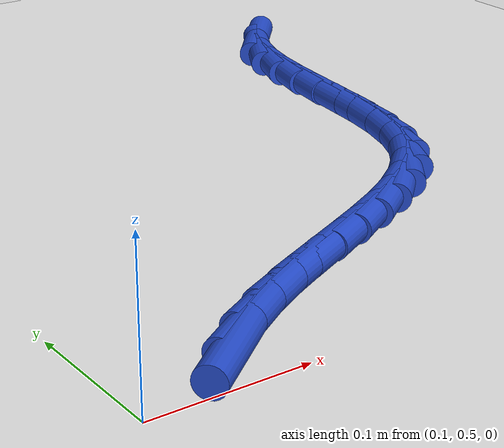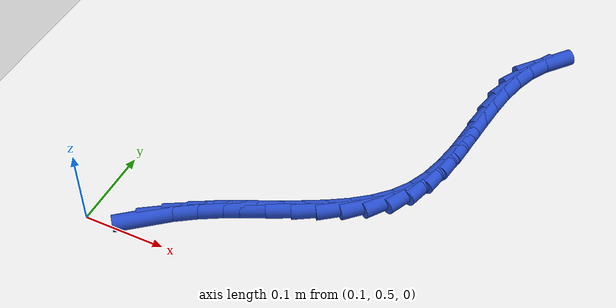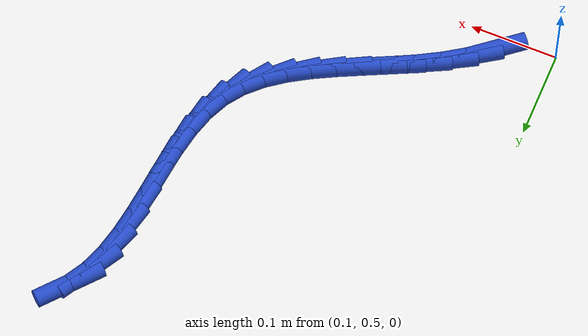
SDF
<sdf version="1.6">
 <world name="default">
  <model name="ground_plane">
   <static>1</static>
   <link name="link">
    <collision name="collision">
     <geometry><plane><normal>0 0 1</normal><size>100 100</size></plane></geometry>
     <surface><friction><ode><mu>100</mu><mu2>50</mu2></ode></friction></surface>
    </collision>
    <visual name="visual">
     <cast_shadows>0</cast_shadows>
     <geometry><plane><normal>0 0 1</normal><size>100 100</size></plane></geometry>
     <material>
      <script><uri>file://media/materials/scripts/gazebo.material</uri><name>Gazebo/WhiteGlow</name></script>
     </material>
    </visual>
   </link>
  </model>
  <model name="line">
   <link name="link_20">
    <pose>0.16806427197226811 0.5232498105973087 0.01 0 1.57 0.6807633675997302</pose>
    <collision name="collision">
     <geometry><cylinder><radius>0.01</radius><length>0.08</length></cylinder></geometry>
    </collision>
    <visual name="visual">
     <material>
      <script><name>Gazebo/Blue</name><uri>file://media/materials/scripts/gazebo.material</uri></script>
     </material>
     <geometry><cylinder><radius>0.01</radius><length>0.08</length></cylinder></geometry>
    </visual>
   </link>
   <link name="link_21">
    <pose>0.18997755326355656 0.5409979186862386 0.01 0 1.57 0.5850759220808966</pose>
    <collision name="collision">
     <geometry><cylinder><radius>0.01</radius><length>0.08</length></cylinder></geometry>
    </collision>
    <visual name="visual">
     <material>
      <script><name>Gazebo/Blue</name><uri>file://media/materials/scripts/gazebo.material</uri></script>
     </material>
     <geometry><cylinder><radius>0.01</radius><length>0.08</length></cylinder></geometry>
    </visual>
   </link>
   <link name="link_22">
    <pose>0.21391069486639117 0.5568523675035043 0.01 0 1.57 0.5111507669095746</pose>
    <collision name="collision">
     <geometry><cylinder><radius>0.01</radius><length>0.08</length></cylinder></geometry>
    </collision>
    <visual name="visual">
     <material>
      <script><name>Gazebo/Blue</name><uri>file://media/materials/scripts/gazebo.material</uri></script>
     </material>
     <geometry><cylinder><radius>0.01</radius><length>0.08</length></cylinder></geometry>
    </visual>
   </link>
   <link name="link_23">
    <pose>0.2394132610267533 0.571156004812643 0.01 0 1.57 0.4655856947512719</pose>
    <collision name="collision">
     <geometry><cylinder><radius>0.01</radius><length>0.08</length></cylinder></geometry>
    </collision>
    <visual name="visual">
     <material>
      <script><name>Gazebo/Blue</name><uri>file://media/materials/scripts/gazebo.material</uri></script>
     </material>
     <geometry><cylinder><radius>0.01</radius><length>0.08</length></cylinder></geometry>
    </visual>
   </link>
   <link name="link_24">
    <pose>0.26583601929483264 0.5844314580816004 0.01 0 1.57 0.4462299824922771</pose>
    <collision name="collision">
     <geometry><cylinder><radius>0.01</radius><length>0.08</length></cylinder></geometry>
    </collision>
    <visual name="visual">
     <material>
      <script><name>Gazebo/Blue</name><uri>file://media/materials/scripts/gazebo.material</uri></script>
     </material>
     <geometry><cylinder><radius>0.01</radius><length>0.08</length></cylinder></geometry>
    </visual>
   </link>
   <link name="link_25">
    <pose>0.29252919797265386 0.5972018424417378 0.01 0 1.57 0.4523822597487026</pose>
    <collision name="collision">
     <geometry><cylinder><radius>0.01</radius><length>0.08</length></cylinder></geometry>
    </collision>
    <visual name="visual">
     <material>
      <script><name>Gazebo/Blue</name><uri>file://media/materials/scripts/gazebo.material</uri></script>
     </material>
     <geometry><cylinder><radius>0.01</radius><length>0.08</length></cylinder></geometry>
    </visual>
   </link>
   <link name="link_26">
    <pose>0.3188430253622414 0.6099902730244166 0.01 0 1.57 0.48515447964832475</pose>
    <collision name="collision">
     <geometry><cylinder><radius>0.01</radius><length>0.08</length></cylinder></geometry>
    </collision>
    <visual name="visual">
     <material>
      <script><name>Gazebo/Blue</name><uri>file://media/materials/scripts/gazebo.material</uri></script>
     </material>
     <geometry><cylinder><radius>0.01</radius><length>0.08</length></cylinder></geometry>
    </visual>
   </link>
   <link name="link_27">
    <pose>0.3441277297656195 0.6233198649609983 0.01 0 1.57 0.5475647684052095</pose>
    <collision name="collision">
     <geometry><cylinder><radius>0.01</radius><length>0.08</length></cylinder></geometry>
    </collision>
    <visual name="visual">
     <material>
      <script><name>Gazebo/Blue</name><uri>file://media/materials/scripts/gazebo.material</uri></script>
     </material>
     <geometry><cylinder><radius>0.01</radius><length>0.08</length></cylinder></geometry>
    </visual>
   </link>
   <link name="link_28">
    <pose>0.36773353948481313 0.6377137333828443 0.01 0 1.57 0.6442046673918681</pose>
    <collision name="collision">
     <geometry><cylinder><radius>0.01</radius><length>0.08</length></cylinder></geometry>
    </collision>
    <visual name="visual">
     <material>
      <script><name>Gazebo/Blue</name><uri>file://media/materials/scripts/gazebo.material</uri></script>
     </material>
     <geometry><cylinder><radius>0.01</radius><length>0.08</length></cylinder></geometry>
    </visual>
   </link>
   <link name="link_29">
    <pose>0.3890106828218462 0.6536949934213158 0.01 0 1.57 0.7797116133684148</pose>
    <collision name="collision">
     <geometry><cylinder><radius>0.01</radius><length>0.08</length></cylinder></geometry>
    </collision>
    <visual name="visual">
     <material>
      <script><name>Gazebo/Blue</name><uri>file://media/materials/scripts/gazebo.material</uri></script>
     </material>
     <geometry><cylinder><radius>0.01</radius><length>0.08</length></cylinder></geometry>
    </visual>
   </link>
   <link name="link_30">
    <pose>0.40730938807874373 0.6717867602077743 0.01 0 1.57 0.9548098722918194</pose>
    <collision name="collision">
     <geometry><cylinder><radius>0.01</radius><length>0.08</length></cylinder></geometry>
    </collision>
    <visual name="visual">
     <material>
      <script><name>Gazebo/Blue</name><uri>file://media/materials/scripts/gazebo.material</uri></script>
     </material>
     <geometry><cylinder><radius>0.01</radius><length>0.08</length></cylinder></geometry>
    </visual>
   </link>
   <link name="link_31">
    <pose>0.4219800958447993 0.6925119871100662 0.01 0 1.57 1.1447168873942477</pose>
    <collision name="collision">
     <geometry><cylinder><radius>0.01</radius><length>0.08</length></cylinder></geometry>
    </collision>
    <visual name="visual">
     <material>
      <script><name>Gazebo/Blue</name><uri>file://media/materials/scripts/gazebo.material</uri></script>
     </material>
     <geometry><cylinder><radius>0.01</radius><length>0.08</length></cylinder></geometry>
    </visual>
   </link>
   <link name="link_32">
    <pose>0.43270489422085223 0.7161409111302198 0.01 0 1.57 1.291662552783225</pose>
    <collision name="collision">
     <geometry><cylinder><radius>0.01</radius><length>0.08</length></cylinder></geometry>
    </collision>
    <visual name="visual">
     <material>
      <script><name>Gazebo/Blue</name><uri>file://media/materials/scripts/gazebo.material</uri></script>
     </material>
     <geometry><cylinder><radius>0.01</radius><length>0.08</length></cylinder></geometry>
    </visual>
   </link>
   <link name="link_33">
    <pose>0.44016814238733637 0.7421800358002898 0.01 0 1.57 1.3903196567529694</pose>
    <collision name="collision">
     <geometry><cylinder><radius>0.01</radius><length>0.08</length></cylinder></geometry>
    </collision>
    <visual name="visual">
     <material>
      <script><name>Gazebo/Blue</name><uri>file://media/materials/scripts/gazebo.material</uri></script>
     </material>
     <geometry><cylinder><radius>0.01</radius><length>0.08</length></cylinder></geometry>
    </visual>
   </link>
   <link name="link_34">
    <pose>0.44524279752796164 0.7699921524267631 0.01 0 1.57 1.4484645540056595</pose>
    <collision name="collision">
     <geometry><cylinder><radius>0.01</radius><length>0.08</length></cylinder></geometry>
    </collision>
    <visual name="visual">
     <material>
      <script><name>Gazebo/Blue</name><uri>file://media/materials/scripts/gazebo.material</uri></script>
     </material>
     <geometry><cylinder><radius>0.01</radius><length>0.08</length></cylinder></geometry>
    </visual>
   </link>
   <link name="link_35">
    <pose>0.4488018168264384 0.7989400523161267 0.01 0 1.57 1.4720795437632634</pose>
    <collision name="collision">
     <geometry><cylinder><radius>0.01</radius><length>0.08</length></cylinder></geometry>
    </collision>
    <visual name="visual">
     <material>
      <script><name>Gazebo/Blue</name><uri>file://media/materials/scripts/gazebo.material</uri></script>
     </material>
     <geometry><cylinder><radius>0.01</radius><length>0.08</length></cylinder></geometry>
    </visual>
   </link>
   <link name="link_36">
    <pose>0.4517181574664762 0.8283865267748662 0.01 0 1.57 1.4638416148519249</pose>
    <collision name="collision">
     <geometry><cylinder><radius>0.01</radius><length>0.08</length></cylinder></geometry>
    </collision>
    <visual name="visual">
     <material>
      <script><name>Gazebo/Blue</name><uri>file://media/materials/scripts/gazebo.material</uri></script>
     </material>
     <geometry><cylinder><radius>0.01</radius><length>0.08</length></cylinder></geometry>
    </visual>
   </link>
   <link name="link_37">
    <pose>0.4548647766317854 0.857694367109469 0.01 0 1.57 1.4229329572079816</pose>
    <collision name="collision">
     <geometry><cylinder><radius>0.01</radius><length>0.08</length></cylinder></geometry>
    </collision>
    <visual name="visual">
     <material>
      <script><name>Gazebo/Blue</name><uri>file://media/materials/scripts/gazebo.material</uri></script>
     </material>
     <geometry><cylinder><radius>0.01</radius><length>0.08</length></cylinder></geometry>
    </visual>
   </link>
   <link name="link_38">
    <pose>0.45911463150607573 0.8862263646264211 0.01 0 1.57 1.3451240663873456</pose>
    <collision name="collision">
     <geometry><cylinder><radius>0.01</radius><length>0.08</length></cylinder></geometry>
    </collision>
    <visual name="visual">
     <material>
      <script><name>Gazebo/Blue</name><uri>file://media/materials/scripts/gazebo.material</uri></script>
     </material>
     <geometry><cylinder><radius>0.01</radius><length>0.08</length></cylinder></geometry>
    </visual>
   </link>
   <link name="link_39">
    <pose>0.4653406792730572 0.9133453106322095 0.01 0 1.57 1.2234595726392983</pose>
    <collision name="collision">
     <geometry><cylinder><radius>0.01</radius><length>0.08</length></cylinder></geometry>
    </collision>
    <visual name="visual">
     <material>
      <script><name>Gazebo/Blue</name><uri>file://media/materials/scripts/gazebo.material</uri></script>
     </material>
     <geometry><cylinder><radius>0.01</radius><length>0.08</length></cylinder></geometry>
    </visual>
   </link>
   <link name="link_40">
    <pose>0.47441587711644007 0.9384139964333205 0.01 0 1.57 1.0526101060902298</pose>
    <collision name="collision">
     <geometry><cylinder><radius>0.01</radius><length>0.08</length></cylinder></geometry>
    </collision>
    <visual name="visual">
     <material>
      <script><name>Gazebo/Blue</name><uri>file://media/materials/scripts/gazebo.material</uri></script>
     </material>
     <geometry><cylinder><radius>0.01</radius><length>0.08</length></cylinder></geometry>
    </visual>
   </link>
   <link name="link_41">
    <pose>0.4871878280152746 0.9608147994104809 0.01 0 1.57 0.8678882118703893</pose>
    <collision name="collision">
     <geometry><cylinder><radius>0.01</radius><length>0.08</length></cylinder></geometry>
    </collision>
    <visual name="visual">
     <material>
      <script><name>Gazebo/Blue</name><uri>file://media/materials/scripts/gazebo.material</uri></script>
     </material>
     <geometry><cylinder><radius>0.01</radius><length>0.08</length></cylinder></geometry>
    </visual>
   </link>
  </model>
 </world>
</sdf>
